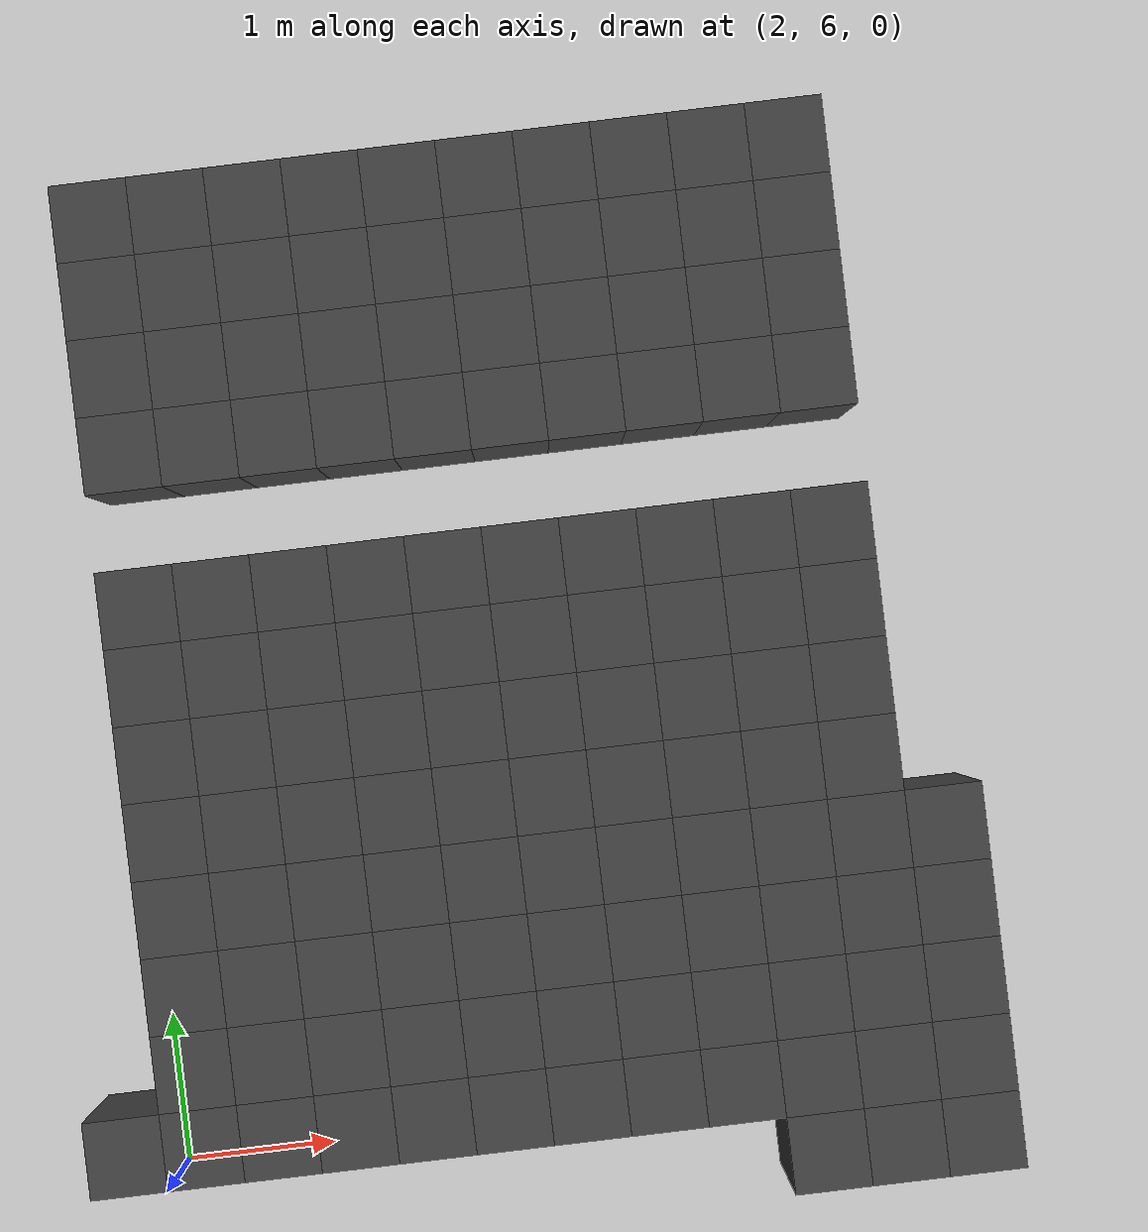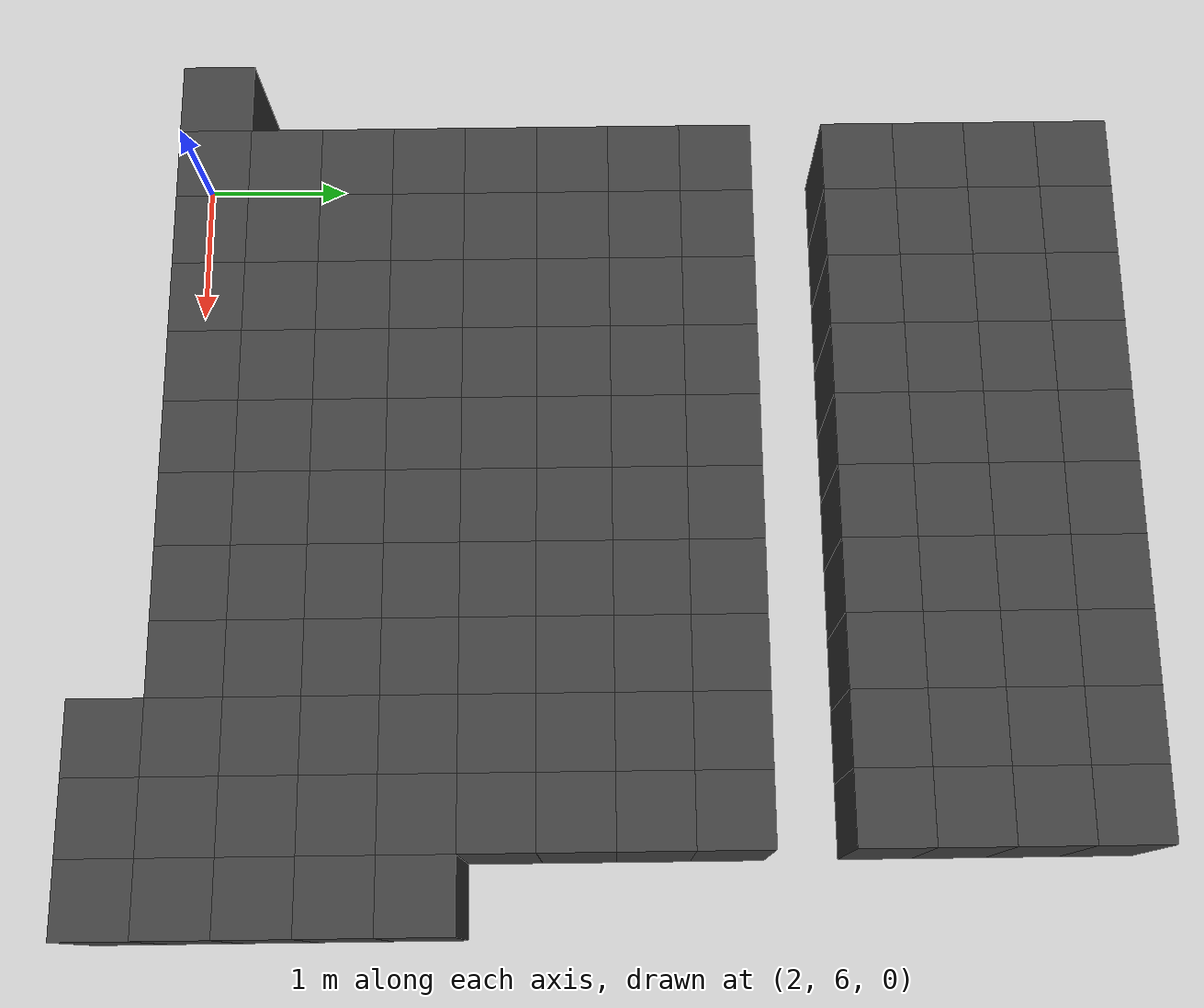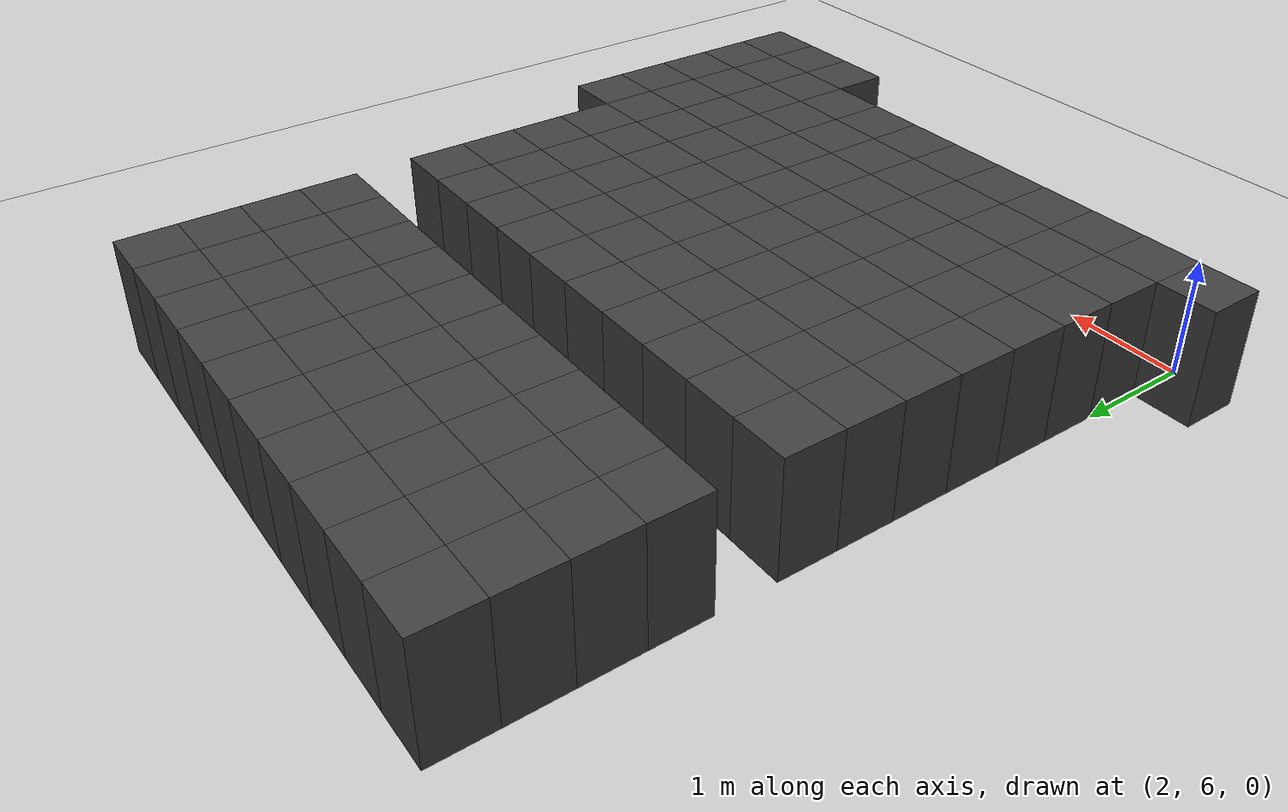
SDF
<sdf version="1.7">
 <world name="map_14494">
  <model name="ground_plane">
   <static>true</static>
   <link name="link">
    <collision name="collision">
     <geometry><plane><normal>0 0 1</normal><size>200 200</size></plane></geometry>
    </collision>
    <visual name="visual">
     <geometry><plane><normal>0 0 1</normal><size>200 200</size></plane></geometry>
     <material><ambient>0.8 0.8 0.8 1</ambient><diffuse>0.8 0.8 0.8 1</diffuse></material>
    </visual>
   </link>
  </model>
  <model name="maze_environment">
   <static>true</static>
   <link name="wall_29">
    <pose>2.250 12.250 0.500 0 0 0</pose>
    <collision name="col"><geometry><box><size>0.5 0.5 1.0</size></box></geometry></collision>
    <visual name="vis">
     <geometry><box><size>0.5 0.5 1.0</size></box></geometry>
     <material><ambient>0.15 0.15 0.15 1</ambient><diffuse>0.25 0.25 0.25 1</diffuse></material>
    </visual>
   </link>
   <link name="wall_30">
    <pose>2.750 12.250 0.500 0 0 0</pose>
    <collision name="col"><geometry><box><size>0.5 0.5 1.0</size></box></geometry></collision>
    <visual name="vis">
     <geometry><box><size>0.5 0.5 1.0</size></box></geometry>
     <material><ambient>0.15 0.15 0.15 1</ambient><diffuse>0.25 0.25 0.25 1</diffuse></material>
    </visual>
   </link>
   <link name="wall_31">
    <pose>3.250 12.250 0.500 0 0 0</pose>
    <collision name="col"><geometry><box><size>0.5 0.5 1.0</size></box></geometry></collision>
    <visual name="vis">
     <geometry><box><size>0.5 0.5 1.0</size></box></geometry>
     <material><ambient>0.15 0.15 0.15 1</ambient><diffuse>0.25 0.25 0.25 1</diffuse></material>
    </visual>
   </link>
   <link name="wall_32">
    <pose>3.750 12.250 0.500 0 0 0</pose>
    <collision name="col"><geometry><box><size>0.5 0.5 1.0</size></box></geometry></collision>
    <visual name="vis">
     <geometry><box><size>0.5 0.5 1.0</size></box></geometry>
     <material><ambient>0.15 0.15 0.15 1</ambient><diffuse>0.25 0.25 0.25 1</diffuse></material>
    </visual>
   </link>
   <link name="wall_33">
    <pose>4.250 12.250 0.500 0 0 0</pose>
    <collision name="col"><geometry><box><size>0.5 0.5 1.0</size></box></geometry></collision>
    <visual name="vis">
     <geometry><box><size>0.5 0.5 1.0</size></box></geometry>
     <material><ambient>0.15 0.15 0.15 1</ambient><diffuse>0.25 0.25 0.25 1</diffuse></material>
    </visual>
   </link>
   <link name="wall_34">
    <pose>4.750 12.250 0.500 0 0 0</pose>
    <collision name="col"><geometry><box><size>0.5 0.5 1.0</size></box></geometry></collision>
    <visual name="vis">
     <geometry><box><size>0.5 0.5 1.0</size></box></geometry>
     <material><ambient>0.15 0.15 0.15 1</ambient><diffuse>0.25 0.25 0.25 1</diffuse></material>
    </visual>
   </link>
   <link name="wall_35">
    <pose>5.250 12.250 0.500 0 0 0</pose>
    <collision name="col"><geometry><box><size>0.5 0.5 1.0</size></box></geometry></collision>
    <visual name="vis">
     <geometry><box><size>0.5 0.5 1.0</size></box></geometry>
     <material><ambient>0.15 0.15 0.15 1</ambient><diffuse>0.25 0.25 0.25 1</diffuse></material>
    </visual>
   </link>
   <link name="wall_36">
    <pose>5.750 12.250 0.500 0 0 0</pose>
    <collision name="col"><geometry><box><size>0.5 0.5 1.0</size></box></geometry></collision>
    <visual name="vis">
     <geometry><box><size>0.5 0.5 1.0</size></box></geometry>
     <material><ambient>0.15 0.15 0.15 1</ambient><diffuse>0.25 0.25 0.25 1</diffuse></material>
    </visual>
   </link>
   <link name="wall_37">
    <pose>6.250 12.250 0.500 0 0 0</pose>
    <collision name="col"><geometry><box><size>0.5 0.5 1.0</size></box></geometry></collision>
    <visual name="vis">
     <geometry><box><size>0.5 0.5 1.0</size></box></geometry>
     <material><ambient>0.15 0.15 0.15 1</ambient><diffuse>0.25 0.25 0.25 1</diffuse></material>
    </visual>
   </link>
   <link name="wall_38">
    <pose>6.750 12.250 0.500 0 0 0</pose>
    <collision name="col"><geometry><box><size>0.5 0.5 1.0</size></box></geometry></collision>
    <visual name="vis">
     <geometry><box><size>0.5 0.5 1.0</size></box></geometry>
     <material><ambient>0.15 0.15 0.15 1</ambient><diffuse>0.25 0.25 0.25 1</diffuse></material>
    </visual>
   </link>
   <link name="wall_76">
    <pose>2.250 11.750 0.500 0 0 0</pose>
    <collision name="col"><geometry><box><size>0.5 0.5 1.0</size></box></geometry></collision>
    <visual name="vis">
     <geometry><box><size>0.5 0.5 1.0</size></box></geometry>
     <material><ambient>0.15 0.15 0.15 1</ambient><diffuse>0.25 0.25 0.25 1</diffuse></material>
    </visual>
   </link>
   <link name="wall_77">
    <pose>2.750 11.750 0.500 0 0 0</pose>
    <collision name="col"><geometry><box><size>0.5 0.5 1.0</size></box></geometry></collision>
    <visual name="vis">
     <geometry><box><size>0.5 0.5 1.0</size></box></geometry>
     <material><ambient>0.15 0.15 0.15 1</ambient><diffuse>0.25 0.25 0.25 1</diffuse></material>
    </visual>
   </link>
   <link name="wall_78">
    <pose>3.250 11.750 0.500 0 0 0</pose>
    <collision name="col"><geometry><box><size>0.5 0.5 1.0</size></box></geometry></collision>
    <visual name="vis">
     <geometry><box><size>0.5 0.5 1.0</size></box></geometry>
     <material><ambient>0.15 0.15 0.15 1</ambient><diffuse>0.25 0.25 0.25 1</diffuse></material>
    </visual>
   </link>
   <link name="wall_79">
    <pose>3.750 11.750 0.500 0 0 0</pose>
    <collision name="col"><geometry><box><size>0.5 0.5 1.0</size></box></geometry></collision>
    <visual name="vis">
     <geometry><box><size>0.5 0.5 1.0</size></box></geometry>
     <material><ambient>0.15 0.15 0.15 1</ambient><diffuse>0.25 0.25 0.25 1</diffuse></material>
    </visual>
   </link>
   <link name="wall_80">
    <pose>4.250 11.750 0.500 0 0 0</pose>
    <collision name="col"><geometry><box><size>0.5 0.5 1.0</size></box></geometry></collision>
    <visual name="vis">
     <geometry><box><size>0.5 0.5 1.0</size></box></geometry>
     <material><ambient>0.15 0.15 0.15 1</ambient><diffuse>0.25 0.25 0.25 1</diffuse></material>
    </visual>
   </link>
   <link name="wall_81">
    <pose>4.750 11.750 0.500 0 0 0</pose>
    <collision name="col"><geometry><box><size>0.5 0.5 1.0</size></box></geometry></collision>
    <visual name="vis">
     <geometry><box><size>0.5 0.5 1.0</size></box></geometry>
     <material><ambient>0.15 0.15 0.15 1</ambient><diffuse>0.25 0.25 0.25 1</diffuse></material>
    </visual>
   </link>
   <link name="wall_82">
    <pose>5.250 11.750 0.500 0 0 0</pose>
    <collision name="col"><geometry><box><size>0.5 0.5 1.0</size></box></geometry></collision>
    <visual name="vis">
     <geometry><box><size>0.5 0.5 1.0</size></box></geometry>
     <material><ambient>0.15 0.15 0.15 1</ambient><diffuse>0.25 0.25 0.25 1</diffuse></material>
    </visual>
   </link>
   <link name="wall_83">
    <pose>5.750 11.750 0.500 0 0 0</pose>
    <collision name="col"><geometry><box><size>0.5 0.5 1.0</size></box></geometry></collision>
    <visual name="vis">
     <geometry><box><size>0.5 0.5 1.0</size></box></geometry>
     <material><ambient>0.15 0.15 0.15 1</ambient><diffuse>0.25 0.25 0.25 1</diffuse></material>
    </visual>
   </link>
   <link name="wall_84">
    <pose>6.250 11.750 0.500 0 0 0</pose>
    <collision name="col"><geometry><box><size>0.5 0.5 1.0</size></box></geometry></collision>
    <visual name="vis">
     <geometry><box><size>0.5 0.5 1.0</size></box></geometry>
     <material><ambient>0.15 0.15 0.15 1</ambient><diffuse>0.25 0.25 0.25 1</diffuse></material>
    </visual>
   </link>
   <link name="wall_85">
    <pose>6.750 11.750 0.500 0 0 0</pose>
    <collision name="col"><geometry><box><size>0.5 0.5 1.0</size></box></geometry></collision>
    <visual name="vis">
     <geometry><box><size>0.5 0.5 1.0</size></box></geometry>
     <material><ambient>0.15 0.15 0.15 1</ambient><diffuse>0.25 0.25 0.25 1</diffuse></material>
    </visual>
   </link>
   <link name="wall_115">
    <pose>2.250 11.250 0.500 0 0 0</pose>
    <collision name="col"><geometry><box><size>0.5 0.5 1.0</size></box></geometry></collision>
    <visual name="vis">
     <geometry><box><size>0.5 0.5 1.0</size></box></geometry>
     <material><ambient>0.15 0.15 0.15 1</ambient><diffuse>0.25 0.25 0.25 1</diffuse></material>
    </visual>
   </link>
   <link name="wall_116">
    <pose>2.750 11.250 0.500 0 0 0</pose>
    <collision name="col"><geometry><box><size>0.5 0.5 1.0</size></box></geometry></collision>
    <visual name="vis">
     <geometry><box><size>0.5 0.5 1.0</size></box></geometry>
     <material><ambient>0.15 0.15 0.15 1</ambient><diffuse>0.25 0.25 0.25 1</diffuse></material>
    </visual>
   </link>
   <link name="wall_117">
    <pose>3.250 11.250 0.500 0 0 0</pose>
    <collision name="col"><geometry><box><size>0.5 0.5 1.0</size></box></geometry></collision>
    <visual name="vis">
     <geometry><box><size>0.5 0.5 1.0</size></box></geometry>
     <material><ambient>0.15 0.15 0.15 1</ambient><diffuse>0.25 0.25 0.25 1</diffuse></material>
    </visual>
   </link>
   <link name="wall_118">
    <pose>3.750 11.250 0.500 0 0 0</pose>
    <collision name="col"><geometry><box><size>0.5 0.5 1.0</size></box></geometry></collision>
    <visual name="vis">
     <geometry><box><size>0.5 0.5 1.0</size></box></geometry>
     <material><ambient>0.15 0.15 0.15 1</ambient><diffuse>0.25 0.25 0.25 1</diffuse></material>
    </visual>
   </link>
   <link name="wall_119">
    <pose>4.250 11.250 0.500 0 0 0</pose>
    <collision name="col"><geometry><box><size>0.5 0.5 1.0</size></box></geometry></collision>
    <visual name="vis">
     <geometry><box><size>0.5 0.5 1.0</size></box></geometry>
     <material><ambient>0.15 0.15 0.15 1</ambient><diffuse>0.25 0.25 0.25 1</diffuse></material>
    </visual>
   </link>
   <link name="wall_120">
    <pose>4.750 11.250 0.500 0 0 0</pose>
    <collision name="col"><geometry><box><size>0.5 0.5 1.0</size></box></geometry></collision>
    <visual name="vis">
     <geometry><box><size>0.5 0.5 1.0</size></box></geometry>
     <material><ambient>0.15 0.15 0.15 1</ambient><diffuse>0.25 0.25 0.25 1</diffuse></material>
    </visual>
   </link>
   <link name="wall_121">
    <pose>5.250 11.250 0.500 0 0 0</pose>
    <collision name="col"><geometry><box><size>0.5 0.5 1.0</size></box></geometry></collision>
    <visual name="vis">
     <geometry><box><size>0.5 0.5 1.0</size></box></geometry>
     <material><ambient>0.15 0.15 0.15 1</ambient><diffuse>0.25 0.25 0.25 1</diffuse></material>
    </visual>
   </link>
   <link name="wall_122">
    <pose>5.750 11.250 0.500 0 0 0</pose>
    <collision name="col"><geometry><box><size>0.5 0.5 1.0</size></box></geometry></collision>
    <visual name="vis">
     <geometry><box><size>0.5 0.5 1.0</size></box></geometry>
     <material><ambient>0.15 0.15 0.15 1</ambient><diffuse>0.25 0.25 0.25 1</diffuse></material>
    </visual>
   </link>
   <link name="wall_123">
    <pose>6.250 11.250 0.500 0 0 0</pose>
    <collision name="col"><geometry><box><size>0.5 0.5 1.0</size></box></geometry></collision>
    <visual name="vis">
     <geometry><box><size>0.5 0.5 1.0</size></box></geometry>
     <material><ambient>0.15 0.15 0.15 1</ambient><diffuse>0.25 0.25 0.25 1</diffuse></material>
    </visual>
   </link>
   <link name="wall_124">
    <pose>6.750 11.250 0.500 0 0 0</pose>
    <collision name="col"><geometry><box><size>0.5 0.5 1.0</size></box></geometry></collision>
    <visual name="vis">
     <geometry><box><size>0.5 0.5 1.0</size></box></geometry>
     <material><ambient>0.15 0.15 0.15 1</ambient><diffuse>0.25 0.25 0.25 1</diffuse></material>
    </visual>
   </link>
   <link name="wall_143">
    <pose>2.250 10.750 0.500 0 0 0</pose>
    <collision name="col"><geometry><box><size>0.5 0.5 1.0</size></box></geometry></collision>
    <visual name="vis">
     <geometry><box><size>0.5 0.5 1.0</size></box></geometry>
     <material><ambient>0.15 0.15 0.15 1</ambient><diffuse>0.25 0.25 0.25 1</diffuse></material>
    </visual>
   </link>
   <link name="wall_144">
    <pose>2.750 10.750 0.500 0 0 0</pose>
    <collision name="col"><geometry><box><size>0.5 0.5 1.0</size></box></geometry></collision>
    <visual name="vis">
     <geometry><box><size>0.5 0.5 1.0</size></box></geometry>
     <material><ambient>0.15 0.15 0.15 1</ambient><diffuse>0.25 0.25 0.25 1</diffuse></material>
    </visual>
   </link>
   <link name="wall_145">
    <pose>3.250 10.750 0.500 0 0 0</pose>
    <collision name="col"><geometry><box><size>0.5 0.5 1.0</size></box></geometry></collision>
    <visual name="vis">
     <geometry><box><size>0.5 0.5 1.0</size></box></geometry>
     <material><ambient>0.15 0.15 0.15 1</ambient><diffuse>0.25 0.25 0.25 1</diffuse></material>
    </visual>
   </link>
   <link name="wall_146">
    <pose>3.750 10.750 0.500 0 0 0</pose>
    <collision name="col"><geometry><box><size>0.5 0.5 1.0</size></box></geometry></collision>
    <visual name="vis">
     <geometry><box><size>0.5 0.5 1.0</size></box></geometry>
     <material><ambient>0.15 0.15 0.15 1</ambient><diffuse>0.25 0.25 0.25 1</diffuse></material>
    </visual>
   </link>
   <link name="wall_147">
    <pose>4.250 10.750 0.500 0 0 0</pose>
    <collision name="col"><geometry><box><size>0.5 0.5 1.0</size></box></geometry></collision>
    <visual name="vis">
     <geometry><box><size>0.5 0.5 1.0</size></box></geometry>
     <material><ambient>0.15 0.15 0.15 1</ambient><diffuse>0.25 0.25 0.25 1</diffuse></material>
    </visual>
   </link>
   <link name="wall_148">
    <pose>4.750 10.750 0.500 0 0 0</pose>
    <collision name="col"><geometry><box><size>0.5 0.5 1.0</size></box></geometry></collision>
    <visual name="vis">
     <geometry><box><size>0.5 0.5 1.0</size></box></geometry>
     <material><ambient>0.15 0.15 0.15 1</ambient><diffuse>0.25 0.25 0.25 1</diffuse></material>
    </visual>
   </link>
   <link name="wall_149">
    <pose>5.250 10.750 0.500 0 0 0</pose>
    <collision name="col"><geometry><box><size>0.5 0.5 1.0</size></box></geometry></collision>
    <visual name="vis">
     <geometry><box><size>0.5 0.5 1.0</size></box></geometry>
     <material><ambient>0.15 0.15 0.15 1</ambient><diffuse>0.25 0.25 0.25 1</diffuse></material>
    </visual>
   </link>
   <link name="wall_150">
    <pose>5.750 10.750 0.500 0 0 0</pose>
    <collision name="col"><geometry><box><size>0.5 0.5 1.0</size></box></geometry></collision>
    <visual name="vis">
     <geometry><box><size>0.5 0.5 1.0</size></box></geometry>
     <material><ambient>0.15 0.15 0.15 1</ambient><diffuse>0.25 0.25 0.25 1</diffuse></material>
    </visual>
   </link>
   <link name="wall_151">
    <pose>6.250 10.750 0.500 0 0 0</pose>
    <collision name="col"><geometry><box><size>0.5 0.5 1.0</size></box></geometry></collision>
    <visual name="vis">
     <geometry><box><size>0.5 0.5 1.0</size></box></geometry>
     <material><ambient>0.15 0.15 0.15 1</ambient><diffuse>0.25 0.25 0.25 1</diffuse></material>
    </visual>
   </link>
   <link name="wall_152">
    <pose>6.750 10.750 0.500 0 0 0</pose>
    <collision name="col"><geometry><box><size>0.5 0.5 1.0</size></box></geometry></collision>
    <visual name="vis">
     <geometry><box><size>0.5 0.5 1.0</size></box></geometry>
     <material><ambient>0.15 0.15 0.15 1</ambient><diffuse>0.25 0.25 0.25 1</diffuse></material>
    </visual>
   </link>
   <link name="wall_191">
    <pose>2.250 9.750 0.500 0 0 0</pose>
    <collision name="col"><geometry><box><size>0.5 0.5 1.0</size></box></geometry></collision>
    <visual name="vis">
     <geometry><box><size>0.5 0.5 1.0</size></box></geometry>
     <material><ambient>0.15 0.15 0.15 1</ambient><diffuse>0.25 0.25 0.25 1</diffuse></material>
    </visual>
   </link>
   <link name="wall_192">
    <pose>2.750 9.750 0.500 0 0 0</pose>
    <collision name="col"><geometry><box><size>0.5 0.5 1.0</size></box></geometry></collision>
    <visual name="vis">
     <geometry><box><size>0.5 0.5 1.0</size></box></geometry>
     <material><ambient>0.15 0.15 0.15 1</ambient><diffuse>0.25 0.25 0.25 1</diffuse></material>
    </visual>
   </link>
   <link name="wall_193">
    <pose>3.250 9.750 0.500 0 0 0</pose>
    <collision name="col"><geometry><box><size>0.5 0.5 1.0</size></box></geometry></collision>
    <visual name="vis">
     <geometry><box><size>0.5 0.5 1.0</size></box></geometry>
     <material><ambient>0.15 0.15 0.15 1</ambient><diffuse>0.25 0.25 0.25 1</diffuse></material>
    </visual>
   </link>
   <link name="wall_194">
    <pose>3.750 9.750 0.500 0 0 0</pose>
    <collision name="col"><geometry><box><size>0.5 0.5 1.0</size></box></geometry></collision>
    <visual name="vis">
     <geometry><box><size>0.5 0.5 1.0</size></box></geometry>
     <material><ambient>0.15 0.15 0.15 1</ambient><diffuse>0.25 0.25 0.25 1</diffuse></material>
    </visual>
   </link>
   <link name="wall_195">
    <pose>4.250 9.750 0.500 0 0 0</pose>
    <collision name="col"><geometry><box><size>0.5 0.5 1.0</size></box></geometry></collision>
    <visual name="vis">
     <geometry><box><size>0.5 0.5 1.0</size></box></geometry>
     <material><ambient>0.15 0.15 0.15 1</ambient><diffuse>0.25 0.25 0.25 1</diffuse></material>
    </visual>
   </link>
   <link name="wall_196">
    <pose>4.750 9.750 0.500 0 0 0</pose>
    <collision name="col"><geometry><box><size>0.5 0.5 1.0</size></box></geometry></collision>
    <visual name="vis">
     <geometry><box><size>0.5 0.5 1.0</size></box></geometry>
     <material><ambient>0.15 0.15 0.15 1</ambient><diffuse>0.25 0.25 0.25 1</diffuse></material>
    </visual>
   </link>
   <link name="wall_197">
    <pose>5.250 9.750 0.500 0 0 0</pose>
    <collision name="col"><geometry><box><size>0.5 0.5 1.0</size></box></geometry></collision>
    <visual name="vis">
     <geometry><box><size>0.5 0.5 1.0</size></box></geometry>
     <material><ambient>0.15 0.15 0.15 1</ambient><diffuse>0.25 0.25 0.25 1</diffuse></material>
    </visual>
   </link>
   <link name="wall_198">
    <pose>5.750 9.750 0.500 0 0 0</pose>
    <collision name="col"><geometry><box><size>0.5 0.5 1.0</size></box></geometry></collision>
    <visual name="vis">
     <geometry><box><size>0.5 0.5 1.0</size></box></geometry>
     <material><ambient>0.15 0.15 0.15 1</ambient><diffuse>0.25 0.25 0.25 1</diffuse></material>
    </visual>
   </link>
   <link name="wall_199">
    <pose>6.250 9.750 0.500 0 0 0</pose>
    <collision name="col"><geometry><box><size>0.5 0.5 1.0</size></box></geometry></collision>
    <visual name="vis">
     <geometry><box><size>0.5 0.5 1.0</size></box></geometry>
     <material><ambient>0.15 0.15 0.15 1</ambient><diffuse>0.25 0.25 0.25 1</diffuse></material>
    </visual>
   </link>
   <link name="wall_200">
    <pose>6.750 9.750 0.500 0 0 0</pose>
    <collision name="col"><geometry><box><size>0.5 0.5 1.0</size></box></geometry></collision>
    <visual name="vis">
     <geometry><box><size>0.5 0.5 1.0</size></box></geometry>
     <material><ambient>0.15 0.15 0.15 1</ambient><diffuse>0.25 0.25 0.25 1</diffuse></material>
    </visual>
   </link>
   <link name="wall_216">
    <pose>2.250 9.250 0.500 0 0 0</pose>
    <collision name="col"><geometry><box><size>0.5 0.5 1.0</size></box></geometry></collision>
    <visual name="vis">
     <geometry><box><size>0.5 0.5 1.0</size></box></geometry>
     <material><ambient>0.15 0.15 0.15 1</ambient><diffuse>0.25 0.25 0.25 1</diffuse></material>
    </visual>
   </link>
   <link name="wall_217">
    <pose>2.750 9.250 0.500 0 0 0</pose>
    <collision name="col"><geometry><box><size>0.5 0.5 1.0</size></box></geometry></collision>
    <visual name="vis">
     <geometry><box><size>0.5 0.5 1.0</size></box></geometry>
     <material><ambient>0.15 0.15 0.15 1</ambient><diffuse>0.25 0.25 0.25 1</diffuse></material>
    </visual>
   </link>
   <link name="wall_218">
    <pose>3.250 9.250 0.500 0 0 0</pose>
    <collision name="col"><geometry><box><size>0.5 0.5 1.0</size></box></geometry></collision>
    <visual name="vis">
     <geometry><box><size>0.5 0.5 1.0</size></box></geometry>
     <material><ambient>0.15 0.15 0.15 1</ambient><diffuse>0.25 0.25 0.25 1</diffuse></material>
    </visual>
   </link>
   <link name="wall_219">
    <pose>3.750 9.250 0.500 0 0 0</pose>
    <collision name="col"><geometry><box><size>0.5 0.5 1.0</size></box></geometry></collision>
    <visual name="vis">
     <geometry><box><size>0.5 0.5 1.0</size></box></geometry>
     <material><ambient>0.15 0.15 0.15 1</ambient><diffuse>0.25 0.25 0.25 1</diffuse></material>
    </visual>
   </link>
   <link name="wall_220">
    <pose>4.250 9.250 0.500 0 0 0</pose>
    <collision name="col"><geometry><box><size>0.5 0.5 1.0</size></box></geometry></collision>
    <visual name="vis">
     <geometry><box><size>0.5 0.5 1.0</size></box></geometry>
     <material><ambient>0.15 0.15 0.15 1</ambient><diffuse>0.25 0.25 0.25 1</diffuse></material>
    </visual>
   </link>
   <link name="wall_221">
    <pose>4.750 9.250 0.500 0 0 0</pose>
    <collision name="col"><geometry><box><size>0.5 0.5 1.0</size></box></geometry></collision>
    <visual name="vis">
     <geometry><box><size>0.5 0.5 1.0</size></box></geometry>
     <material><ambient>0.15 0.15 0.15 1</ambient><diffuse>0.25 0.25 0.25 1</diffuse></material>
    </visual>
   </link>
   <link name="wall_222">
    <pose>5.250 9.250 0.500 0 0 0</pose>
    <collision name="col"><geometry><box><size>0.5 0.5 1.0</size></box></geometry></collision>
    <visual name="vis">
     <geometry><box><size>0.5 0.5 1.0</size></box></geometry>
     <material><ambient>0.15 0.15 0.15 1</ambient><diffuse>0.25 0.25 0.25 1</diffuse></material>
    </visual>
   </link>
   <link name="wall_223">
    <pose>5.750 9.250 0.500 0 0 0</pose>
    <collision name="col"><geometry><box><size>0.5 0.5 1.0</size></box></geometry></collision>
    <visual name="vis">
     <geometry><box><size>0.5 0.5 1.0</size></box></geometry>
     <material><ambient>0.15 0.15 0.15 1</ambient><diffuse>0.25 0.25 0.25 1</diffuse></material>
    </visual>
   </link>
   <link name="wall_224">
    <pose>6.250 9.250 0.500 0 0 0</pose>
    <collision name="col"><geometry><box><size>0.5 0.5 1.0</size></box></geometry></collision>
    <visual name="vis">
     <geometry><box><size>0.5 0.5 1.0</size></box></geometry>
     <material><ambient>0.15 0.15 0.15 1</ambient><diffuse>0.25 0.25 0.25 1</diffuse></material>
    </visual>
   </link>
   <link name="wall_225">
    <pose>6.750 9.250 0.500 0 0 0</pose>
    <collision name="col"><geometry><box><size>0.5 0.5 1.0</size></box></geometry></collision>
    <visual name="vis">
     <geometry><box><size>0.5 0.5 1.0</size></box></geometry>
     <material><ambient>0.15 0.15 0.15 1</ambient><diffuse>0.25 0.25 0.25 1</diffuse></material>
    </visual>
   </link>
   <link name="wall_254">
    <pose>2.250 8.750 0.500 0 0 0</pose>
    <collision name="col"><geometry><box><size>0.5 0.5 1.0</size></box></geometry></collision>
    <visual name="vis">
     <geometry><box><size>0.5 0.5 1.0</size></box></geometry>
     <material><ambient>0.15 0.15 0.15 1</ambient><diffuse>0.25 0.25 0.25 1</diffuse></material>
    </visual>
   </link>
   <link name="wall_255">
    <pose>2.750 8.750 0.500 0 0 0</pose>
    <collision name="col"><geometry><box><size>0.5 0.5 1.0</size></box></geometry></collision>
    <visual name="vis">
     <geometry><box><size>0.5 0.5 1.0</size></box></geometry>
     <material><ambient>0.15 0.15 0.15 1</ambient><diffuse>0.25 0.25 0.25 1</diffuse></material>
    </visual>
   </link>
   <link name="wall_256">
    <pose>3.250 8.750 0.500 0 0 0</pose>
    <collision name="col"><geometry><box><size>0.5 0.5 1.0</size></box></geometry></collision>
    <visual name="vis">
     <geometry><box><size>0.5 0.5 1.0</size></box></geometry>
     <material><ambient>0.15 0.15 0.15 1</ambient><diffuse>0.25 0.25 0.25 1</diffuse></material>
    </visual>
   </link>
   <link name="wall_257">
    <pose>3.750 8.750 0.500 0 0 0</pose>
    <collision name="col"><geometry><box><size>0.5 0.5 1.0</size></box></geometry></collision>
    <visual name="vis">
     <geometry><box><size>0.5 0.5 1.0</size></box></geometry>
     <material><ambient>0.15 0.15 0.15 1</ambient><diffuse>0.25 0.25 0.25 1</diffuse></material>
    </visual>
   </link>
   <link name="wall_258">
    <pose>4.250 8.750 0.500 0 0 0</pose>
    <collision name="col"><geometry><box><size>0.5 0.5 1.0</size></box></geometry></collision>
    <visual name="vis">
     <geometry><box><size>0.5 0.5 1.0</size></box></geometry>
     <material><ambient>0.15 0.15 0.15 1</ambient><diffuse>0.25 0.25 0.25 1</diffuse></material>
    </visual>
   </link>
   <link name="wall_259">
    <pose>4.750 8.750 0.500 0 0 0</pose>
    <collision name="col"><geometry><box><size>0.5 0.5 1.0</size></box></geometry></collision>
    <visual name="vis">
     <geometry><box><size>0.5 0.5 1.0</size></box></geometry>
     <material><ambient>0.15 0.15 0.15 1</ambient><diffuse>0.25 0.25 0.25 1</diffuse></material>
    </visual>
   </link>
   <link name="wall_260">
    <pose>5.250 8.750 0.500 0 0 0</pose>
    <collision name="col"><geometry><box><size>0.5 0.5 1.0</size></box></geometry></collision>
    <visual name="vis">
     <geometry><box><size>0.5 0.5 1.0</size></box></geometry>
     <material><ambient>0.15 0.15 0.15 1</ambient><diffuse>0.25 0.25 0.25 1</diffuse></material>
    </visual>
   </link>
   <link name="wall_261">
    <pose>5.750 8.750 0.500 0 0 0</pose>
    <collision name="col"><geometry><box><size>0.5 0.5 1.0</size></box></geometry></collision>
    <visual name="vis">
     <geometry><box><size>0.5 0.5 1.0</size></box></geometry>
     <material><ambient>0.15 0.15 0.15 1</ambient><diffuse>0.25 0.25 0.25 1</diffuse></material>
    </visual>
   </link>
   <link name="wall_262">
    <pose>6.250 8.750 0.500 0 0 0</pose>
    <collision name="col"><geometry><box><size>0.5 0.5 1.0</size></box></geometry></collision>
    <visual name="vis">
     <geometry><box><size>0.5 0.5 1.0</size></box></geometry>
     <material><ambient>0.15 0.15 0.15 1</ambient><diffuse>0.25 0.25 0.25 1</diffuse></material>
    </visual>
   </link>
   <link name="wall_263">
    <pose>6.750 8.750 0.500 0 0 0</pose>
    <collision name="col"><geometry><box><size>0.5 0.5 1.0</size></box></geometry></collision>
    <visual name="vis">
     <geometry><box><size>0.5 0.5 1.0</size></box></geometry>
     <material><ambient>0.15 0.15 0.15 1</ambient><diffuse>0.25 0.25 0.25 1</diffuse></material>
    </visual>
   </link>
   <link name="wall_296">
    <pose>2.250 8.250 0.500 0 0 0</pose>
    <collision name="col"><geometry><box><size>0.5 0.5 1.0</size></box></geometry></collision>
    <visual name="vis">
     <geometry><box><size>0.5 0.5 1.0</size></box></geometry>
     <material><ambient>0.15 0.15 0.15 1</ambient><diffuse>0.25 0.25 0.25 1</diffuse></material>
    </visual>
   </link>
   <link name="wall_297">
    <pose>2.750 8.250 0.500 0 0 0</pose>
    <collision name="col"><geometry><box><size>0.5 0.5 1.0</size></box></geometry></collision>
    <visual name="vis">
     <geometry><box><size>0.5 0.5 1.0</size></box></geometry>
     <material><ambient>0.15 0.15 0.15 1</ambient><diffuse>0.25 0.25 0.25 1</diffuse></material>
    </visual>
   </link>
   <link name="wall_298">
    <pose>3.250 8.250 0.500 0 0 0</pose>
    <collision name="col"><geometry><box><size>0.5 0.5 1.0</size></box></geometry></collision>
    <visual name="vis">
     <geometry><box><size>0.5 0.5 1.0</size></box></geometry>
     <material><ambient>0.15 0.15 0.15 1</ambient><diffuse>0.25 0.25 0.25 1</diffuse></material>
    </visual>
   </link>
   <link name="wall_299">
    <pose>3.750 8.250 0.500 0 0 0</pose>
    <collision name="col"><geometry><box><size>0.5 0.5 1.0</size></box></geometry></collision>
    <visual name="vis">
     <geometry><box><size>0.5 0.5 1.0</size></box></geometry>
     <material><ambient>0.15 0.15 0.15 1</ambient><diffuse>0.25 0.25 0.25 1</diffuse></material>
    </visual>
   </link>
   <link name="wall_300">
    <pose>4.250 8.250 0.500 0 0 0</pose>
    <collision name="col"><geometry><box><size>0.5 0.5 1.0</size></box></geometry></collision>
    <visual name="vis">
     <geometry><box><size>0.5 0.5 1.0</size></box></geometry>
     <material><ambient>0.15 0.15 0.15 1</ambient><diffuse>0.25 0.25 0.25 1</diffuse></material>
    </visual>
   </link>
   <link name="wall_301">
    <pose>4.750 8.250 0.500 0 0 0</pose>
    <collision name="col"><geometry><box><size>0.5 0.5 1.0</size></box></geometry></collision>
    <visual name="vis">
     <geometry><box><size>0.5 0.5 1.0</size></box></geometry>
     <material><ambient>0.15 0.15 0.15 1</ambient><diffuse>0.25 0.25 0.25 1</diffuse></material>
    </visual>
   </link>
   <link name="wall_302">
    <pose>5.250 8.250 0.500 0 0 0</pose>
    <collision name="col"><geometry><box><size>0.5 0.5 1.0</size></box></geometry></collision>
    <visual name="vis">
     <geometry><box><size>0.5 0.5 1.0</size></box></geometry>
     <material><ambient>0.15 0.15 0.15 1</ambient><diffuse>0.25 0.25 0.25 1</diffuse></material>
    </visual>
   </link>
   <link name="wall_303">
    <pose>5.750 8.250 0.500 0 0 0</pose>
    <collision name="col"><geometry><box><size>0.5 0.5 1.0</size></box></geometry></collision>
    <visual name="vis">
     <geometry><box><size>0.5 0.5 1.0</size></box></geometry>
     <material><ambient>0.15 0.15 0.15 1</ambient><diffuse>0.25 0.25 0.25 1</diffuse></material>
    </visual>
   </link>
   <link name="wall_304">
    <pose>6.250 8.250 0.500 0 0 0</pose>
    <collision name="col"><geometry><box><size>0.5 0.5 1.0</size></box></geometry></collision>
    <visual name="vis">
     <geometry><box><size>0.5 0.5 1.0</size></box></geometry>
     <material><ambient>0.15 0.15 0.15 1</ambient><diffuse>0.25 0.25 0.25 1</diffuse></material>
    </visual>
   </link>
   <link name="wall_305">
    <pose>6.750 8.250 0.500 0 0 0</pose>
    <collision name="col"><geometry><box><size>0.5 0.5 1.0</size></box></geometry></collision>
    <visual name="vis">
     <geometry><box><size>0.5 0.5 1.0</size></box></geometry>
     <material><ambient>0.15 0.15 0.15 1</ambient><diffuse>0.25 0.25 0.25 1</diffuse></material>
    </visual>
   </link>
   <link name="wall_337">
    <pose>2.250 7.750 0.500 0 0 0</pose>
    <collision name="col"><geometry><box><size>0.5 0.5 1.0</size></box></geometry></collision>
    <visual name="vis">
     <geometry><box><size>0.5 0.5 1.0</size></box></geometry>
     <material><ambient>0.15 0.15 0.15 1</ambient><diffuse>0.25 0.25 0.25 1</diffuse></material>
    </visual>
   </link>
   <link name="wall_338">
    <pose>2.750 7.750 0.500 0 0 0</pose>
    <collision name="col"><geometry><box><size>0.5 0.5 1.0</size></box></geometry></collision>
    <visual name="vis">
     <geometry><box><size>0.5 0.5 1.0</size></box></geometry>
     <material><ambient>0.15 0.15 0.15 1</ambient><diffuse>0.25 0.25 0.25 1</diffuse></material>
    </visual>
   </link>
   <link name="wall_339">
    <pose>3.250 7.750 0.500 0 0 0</pose>
    <collision name="col"><geometry><box><size>0.5 0.5 1.0</size></box></geometry></collision>
    <visual name="vis">
     <geometry><box><size>0.5 0.5 1.0</size></box></geometry>
     <material><ambient>0.15 0.15 0.15 1</ambient><diffuse>0.25 0.25 0.25 1</diffuse></material>
    </visual>
   </link>
   <link name="wall_340">
    <pose>3.750 7.750 0.500 0 0 0</pose>
    <collision name="col"><geometry><box><size>0.5 0.5 1.0</size></box></geometry></collision>
    <visual name="vis">
     <geometry><box><size>0.5 0.5 1.0</size></box></geometry>
     <material><ambient>0.15 0.15 0.15 1</ambient><diffuse>0.25 0.25 0.25 1</diffuse></material>
    </visual>
   </link>
   <link name="wall_341">
    <pose>4.250 7.750 0.500 0 0 0</pose>
    <collision name="col"><geometry><box><size>0.5 0.5 1.0</size></box></geometry></collision>
    <visual name="vis">
     <geometry><box><size>0.5 0.5 1.0</size></box></geometry>
     <material><ambient>0.15 0.15 0.15 1</ambient><diffuse>0.25 0.25 0.25 1</diffuse></material>
    </visual>
   </link>
   <link name="wall_342">
    <pose>4.750 7.750 0.500 0 0 0</pose>
    <collision name="col"><geometry><box><size>0.5 0.5 1.0</size></box></geometry></collision>
    <visual name="vis">
     <geometry><box><size>0.5 0.5 1.0</size></box></geometry>
     <material><ambient>0.15 0.15 0.15 1</ambient><diffuse>0.25 0.25 0.25 1</diffuse></material>
    </visual>
   </link>
   <link name="wall_343">
    <pose>5.250 7.750 0.500 0 0 0</pose>
    <collision name="col"><geometry><box><size>0.5 0.5 1.0</size></box></geometry></collision>
    <visual name="vis">
     <geometry><box><size>0.5 0.5 1.0</size></box></geometry>
     <material><ambient>0.15 0.15 0.15 1</ambient><diffuse>0.25 0.25 0.25 1</diffuse></material>
    </visual>
   </link>
   <link name="wall_344">
    <pose>5.750 7.750 0.500 0 0 0</pose>
    <collision name="col"><geometry><box><size>0.5 0.5 1.0</size></box></geometry></collision>
    <visual name="vis">
     <geometry><box><size>0.5 0.5 1.0</size></box></geometry>
     <material><ambient>0.15 0.15 0.15 1</ambient><diffuse>0.25 0.25 0.25 1</diffuse></material>
    </visual>
   </link>
   <link name="wall_345">
    <pose>6.250 7.750 0.500 0 0 0</pose>
    <collision name="col"><geometry><box><size>0.5 0.5 1.0</size></box></geometry></collision>
    <visual name="vis">
     <geometry><box><size>0.5 0.5 1.0</size></box></geometry>
     <material><ambient>0.15 0.15 0.15 1</ambient><diffuse>0.25 0.25 0.25 1</diffuse></material>
    </visual>
   </link>
   <link name="wall_346">
    <pose>6.750 7.750 0.500 0 0 0</pose>
    <collision name="col"><geometry><box><size>0.5 0.5 1.0</size></box></geometry></collision>
    <visual name="vis">
     <geometry><box><size>0.5 0.5 1.0</size></box></geometry>
     <material><ambient>0.15 0.15 0.15 1</ambient><diffuse>0.25 0.25 0.25 1</diffuse></material>
    </visual>
   </link>
   <link name="wall_347">
    <pose>7.250 7.750 0.500 0 0 0</pose>
    <collision name="col"><geometry><box><size>0.5 0.5 1.0</size></box></geometry></collision>
    <visual name="vis">
     <geometry><box><size>0.5 0.5 1.0</size></box></geometry>
     <material><ambient>0.15 0.15 0.15 1</ambient><diffuse>0.25 0.25 0.25 1</diffuse></material>
    </visual>
   </link>
   <link name="wall_378">
    <pose>2.250 7.250 0.500 0 0 0</pose>
    <collision name="col"><geometry><box><size>0.5 0.5 1.0</size></box></geometry></collision>
    <visual name="vis">
     <geometry><box><size>0.5 0.5 1.0</size></box></geometry>
     <material><ambient>0.15 0.15 0.15 1</ambient><diffuse>0.25 0.25 0.25 1</diffuse></material>
    </visual>
   </link>
   <link name="wall_379">
    <pose>2.750 7.250 0.500 0 0 0</pose>
    <collision name="col"><geometry><box><size>0.5 0.5 1.0</size></box></geometry></collision>
    <visual name="vis">
     <geometry><box><size>0.5 0.5 1.0</size></box></geometry>
     <material><ambient>0.15 0.15 0.15 1</ambient><diffuse>0.25 0.25 0.25 1</diffuse></material>
    </visual>
   </link>
   <link name="wall_380">
    <pose>3.250 7.250 0.500 0 0 0</pose>
    <collision name="col"><geometry><box><size>0.5 0.5 1.0</size></box></geometry></collision>
    <visual name="vis">
     <geometry><box><size>0.5 0.5 1.0</size></box></geometry>
     <material><ambient>0.15 0.15 0.15 1</ambient><diffuse>0.25 0.25 0.25 1</diffuse></material>
    </visual>
   </link>
   <link name="wall_381">
    <pose>3.750 7.250 0.500 0 0 0</pose>
    <collision name="col"><geometry><box><size>0.5 0.5 1.0</size></box></geometry></collision>
    <visual name="vis">
     <geometry><box><size>0.5 0.5 1.0</size></box></geometry>
     <material><ambient>0.15 0.15 0.15 1</ambient><diffuse>0.25 0.25 0.25 1</diffuse></material>
    </visual>
   </link>
   <link name="wall_382">
    <pose>4.250 7.250 0.500 0 0 0</pose>
    <collision name="col"><geometry><box><size>0.5 0.5 1.0</size></box></geometry></collision>
    <visual name="vis">
     <geometry><box><size>0.5 0.5 1.0</size></box></geometry>
     <material><ambient>0.15 0.15 0.15 1</ambient><diffuse>0.25 0.25 0.25 1</diffuse></material>
    </visual>
   </link>
   <link name="wall_383">
    <pose>4.750 7.250 0.500 0 0 0</pose>
    <collision name="col"><geometry><box><size>0.5 0.5 1.0</size></box></geometry></collision>
    <visual name="vis">
     <geometry><box><size>0.5 0.5 1.0</size></box></geometry>
     <material><ambient>0.15 0.15 0.15 1</ambient><diffuse>0.25 0.25 0.25 1</diffuse></material>
    </visual>
   </link>
   <link name="wall_384">
    <pose>5.250 7.250 0.500 0 0 0</pose>
    <collision name="col"><geometry><box><size>0.5 0.5 1.0</size></box></geometry></collision>
    <visual name="vis">
     <geometry><box><size>0.5 0.5 1.0</size></box></geometry>
     <material><ambient>0.15 0.15 0.15 1</ambient><diffuse>0.25 0.25 0.25 1</diffuse></material>
    </visual>
   </link>
   <link name="wall_385">
    <pose>5.750 7.250 0.500 0 0 0</pose>
    <collision name="col"><geometry><box><size>0.5 0.5 1.0</size></box></geometry></collision>
    <visual name="vis">
     <geometry><box><size>0.5 0.5 1.0</size></box></geometry>
     <material><ambient>0.15 0.15 0.15 1</ambient><diffuse>0.25 0.25 0.25 1</diffuse></material>
    </visual>
   </link>
   <link name="wall_386">
    <pose>6.250 7.250 0.500 0 0 0</pose>
    <collision name="col"><geometry><box><size>0.5 0.5 1.0</size></box></geometry></collision>
    <visual name="vis">
     <geometry><box><size>0.5 0.5 1.0</size></box></geometry>
     <material><ambient>0.15 0.15 0.15 1</ambient><diffuse>0.25 0.25 0.25 1</diffuse></material>
    </visual>
   </link>
   <link name="wall_387">
    <pose>6.750 7.250 0.500 0 0 0</pose>
    <collision name="col"><geometry><box><size>0.5 0.5 1.0</size></box></geometry></collision>
    <visual name="vis">
     <geometry><box><size>0.5 0.5 1.0</size></box></geometry>
     <material><ambient>0.15 0.15 0.15 1</ambient><diffuse>0.25 0.25 0.25 1</diffuse></material>
    </visual>
   </link>
   <link name="wall_388">
    <pose>7.250 7.250 0.500 0 0 0</pose>
    <collision name="col"><geometry><box><size>0.5 0.5 1.0</size></box></geometry></collision>
    <visual name="vis">
     <geometry><box><size>0.5 0.5 1.0</size></box></geometry>
     <material><ambient>0.15 0.15 0.15 1</ambient><diffuse>0.25 0.25 0.25 1</diffuse></material>
    </visual>
   </link>
   <link name="wall_416">
    <pose>2.250 6.750 0.500 0 0 0</pose>
    <collision name="col"><geometry><box><size>0.5 0.5 1.0</size></box></geometry></collision>
    <visual name="vis">
     <geometry><box><size>0.5 0.5 1.0</size></box></geometry>
     <material><ambient>0.15 0.15 0.15 1</ambient><diffuse>0.25 0.25 0.25 1</diffuse></material>
    </visual>
   </link>
   <link name="wall_417">
    <pose>2.750 6.750 0.500 0 0 0</pose>
    <collision name="col"><geometry><box><size>0.5 0.5 1.0</size></box></geometry></collision>
    <visual name="vis">
     <geometry><box><size>0.5 0.5 1.0</size></box></geometry>
     <material><ambient>0.15 0.15 0.15 1</ambient><diffuse>0.25 0.25 0.25 1</diffuse></material>
    </visual>
   </link>
   <link name="wall_418">
    <pose>3.250 6.750 0.500 0 0 0</pose>
    <collision name="col"><geometry><box><size>0.5 0.5 1.0</size></box></geometry></collision>
    <visual name="vis">
     <geometry><box><size>0.5 0.5 1.0</size></box></geometry>
     <material><ambient>0.15 0.15 0.15 1</ambient><diffuse>0.25 0.25 0.25 1</diffuse></material>
    </visual>
   </link>
   <link name="wall_419">
    <pose>3.750 6.750 0.500 0 0 0</pose>
    <collision name="col"><geometry><box><size>0.5 0.5 1.0</size></box></geometry></collision>
    <visual name="vis">
     <geometry><box><size>0.5 0.5 1.0</size></box></geometry>
     <material><ambient>0.15 0.15 0.15 1</ambient><diffuse>0.25 0.25 0.25 1</diffuse></material>
    </visual>
   </link>
   <link name="wall_420">
    <pose>4.250 6.750 0.500 0 0 0</pose>
    <collision name="col"><geometry><box><size>0.5 0.5 1.0</size></box></geometry></collision>
    <visual name="vis">
     <geometry><box><size>0.5 0.5 1.0</size></box></geometry>
     <material><ambient>0.15 0.15 0.15 1</ambient><diffuse>0.25 0.25 0.25 1</diffuse></material>
    </visual>
   </link>
   <link name="wall_421">
    <pose>4.750 6.750 0.500 0 0 0</pose>
    <collision name="col"><geometry><box><size>0.5 0.5 1.0</size></box></geometry></collision>
    <visual name="vis">
     <geometry><box><size>0.5 0.5 1.0</size></box></geometry>
     <material><ambient>0.15 0.15 0.15 1</ambient><diffuse>0.25 0.25 0.25 1</diffuse></material>
    </visual>
   </link>
   <link name="wall_422">
    <pose>5.250 6.750 0.500 0 0 0</pose>
    <collision name="col"><geometry><box><size>0.5 0.5 1.0</size></box></geometry></collision>
    <visual name="vis">
     <geometry><box><size>0.5 0.5 1.0</size></box></geometry>
     <material><ambient>0.15 0.15 0.15 1</ambient><diffuse>0.25 0.25 0.25 1</diffuse></material>
    </visual>
   </link>
   <link name="wall_423">
    <pose>5.750 6.750 0.500 0 0 0</pose>
    <collision name="col"><geometry><box><size>0.5 0.5 1.0</size></box></geometry></collision>
    <visual name="vis">
     <geometry><box><size>0.5 0.5 1.0</size></box></geometry>
     <material><ambient>0.15 0.15 0.15 1</ambient><diffuse>0.25 0.25 0.25 1</diffuse></material>
    </visual>
   </link>
   <link name="wall_424">
    <pose>6.250 6.750 0.500 0 0 0</pose>
    <collision name="col"><geometry><box><size>0.5 0.5 1.0</size></box></geometry></collision>
    <visual name="vis">
     <geometry><box><size>0.5 0.5 1.0</size></box></geometry>
     <material><ambient>0.15 0.15 0.15 1</ambient><diffuse>0.25 0.25 0.25 1</diffuse></material>
    </visual>
   </link>
   <link name="wall_425">
    <pose>6.750 6.750 0.500 0 0 0</pose>
    <collision name="col"><geometry><box><size>0.5 0.5 1.0</size></box></geometry></collision>
    <visual name="vis">
     <geometry><box><size>0.5 0.5 1.0</size></box></geometry>
     <material><ambient>0.15 0.15 0.15 1</ambient><diffuse>0.25 0.25 0.25 1</diffuse></material>
    </visual>
   </link>
   <link name="wall_426">
    <pose>7.250 6.750 0.500 0 0 0</pose>
    <collision name="col"><geometry><box><size>0.5 0.5 1.0</size></box></geometry></collision>
    <visual name="vis">
     <geometry><box><size>0.5 0.5 1.0</size></box></geometry>
     <material><ambient>0.15 0.15 0.15 1</ambient><diffuse>0.25 0.25 0.25 1</diffuse></material>
    </visual>
   </link>
   <link name="wall_453">
    <pose>1.750 6.250 0.500 0 0 0</pose>
    <collision name="col"><geometry><box><size>0.5 0.5 1.0</size></box></geometry></collision>
    <visual name="vis">
     <geometry><box><size>0.5 0.5 1.0</size></box></geometry>
     <material><ambient>0.15 0.15 0.15 1</ambient><diffuse>0.25 0.25 0.25 1</diffuse></material>
    </visual>
   </link>
   <link name="wall_454">
    <pose>2.250 6.250 0.500 0 0 0</pose>
    <collision name="col"><geometry><box><size>0.5 0.5 1.0</size></box></geometry></collision>
    <visual name="vis">
     <geometry><box><size>0.5 0.5 1.0</size></box></geometry>
     <material><ambient>0.15 0.15 0.15 1</ambient><diffuse>0.25 0.25 0.25 1</diffuse></material>
    </visual>
   </link>
   <link name="wall_455">
    <pose>2.750 6.250 0.500 0 0 0</pose>
    <collision name="col"><geometry><box><size>0.5 0.5 1.0</size></box></geometry></collision>
    <visual name="vis">
     <geometry><box><size>0.5 0.5 1.0</size></box></geometry>
     <material><ambient>0.15 0.15 0.15 1</ambient><diffuse>0.25 0.25 0.25 1</diffuse></material>
    </visual>
   </link>
   <link name="wall_456">
    <pose>3.250 6.250 0.500 0 0 0</pose>
    <collision name="col"><geometry><box><size>0.5 0.5 1.0</size></box></geometry></collision>
    <visual name="vis">
     <geometry><box><size>0.5 0.5 1.0</size></box></geometry>
     <material><ambient>0.15 0.15 0.15 1</ambient><diffuse>0.25 0.25 0.25 1</diffuse></material>
    </visual>
   </link>
   <link name="wall_457">
    <pose>3.750 6.250 0.500 0 0 0</pose>
    <collision name="col"><geometry><box><size>0.5 0.5 1.0</size></box></geometry></collision>
    <visual name="vis">
     <geometry><box><size>0.5 0.5 1.0</size></box></geometry>
     <material><ambient>0.15 0.15 0.15 1</ambient><diffuse>0.25 0.25 0.25 1</diffuse></material>
    </visual>
   </link>
   <link name="wall_458">
    <pose>4.250 6.250 0.500 0 0 0</pose>
    <collision name="col"><geometry><box><size>0.5 0.5 1.0</size></box></geometry></collision>
    <visual name="vis">
     <geometry><box><size>0.5 0.5 1.0</size></box></geometry>
     <material><ambient>0.15 0.15 0.15 1</ambient><diffuse>0.25 0.25 0.25 1</diffuse></material>
    </visual>
   </link>
   <link name="wall_459">
    <pose>4.750 6.250 0.500 0 0 0</pose>
    <collision name="col"><geometry><box><size>0.5 0.5 1.0</size></box></geometry></collision>
    <visual name="vis">
     <geometry><box><size>0.5 0.5 1.0</size></box></geometry>
     <material><ambient>0.15 0.15 0.15 1</ambient><diffuse>0.25 0.25 0.25 1</diffuse></material>
    </visual>
   </link>
   <link name="wall_460">
    <pose>5.250 6.250 0.500 0 0 0</pose>
    <collision name="col"><geometry><box><size>0.5 0.5 1.0</size></box></geometry></collision>
    <visual name="vis">
     <geometry><box><size>0.5 0.5 1.0</size></box></geometry>
     <material><ambient>0.15 0.15 0.15 1</ambient><diffuse>0.25 0.25 0.25 1</diffuse></material>
    </visual>
   </link>
   <link name="wall_461">
    <pose>5.750 6.250 0.500 0 0 0</pose>
    <collision name="col"><geometry><box><size>0.5 0.5 1.0</size></box></geometry></collision>
    <visual name="vis">
     <geometry><box><size>0.5 0.5 1.0</size></box></geometry>
     <material><ambient>0.15 0.15 0.15 1</ambient><diffuse>0.25 0.25 0.25 1</diffuse></material>
    </visual>
   </link>
   <link name="wall_462">
    <pose>6.250 6.250 0.500 0 0 0</pose>
    <collision name="col"><geometry><box><size>0.5 0.5 1.0</size></box></geometry></collision>
    <visual name="vis">
     <geometry><box><size>0.5 0.5 1.0</size></box></geometry>
     <material><ambient>0.15 0.15 0.15 1</ambient><diffuse>0.25 0.25 0.25 1</diffuse></material>
    </visual>
   </link>
   <link name="wall_463">
    <pose>6.750 6.250 0.500 0 0 0</pose>
    <collision name="col"><geometry><box><size>0.5 0.5 1.0</size></box></geometry></collision>
    <visual name="vis">
     <geometry><box><size>0.5 0.5 1.0</size></box></geometry>
     <material><ambient>0.15 0.15 0.15 1</ambient><diffuse>0.25 0.25 0.25 1</diffuse></material>
    </visual>
   </link>
   <link name="wall_464">
    <pose>7.250 6.250 0.500 0 0 0</pose>
    <collision name="col"><geometry><box><size>0.5 0.5 1.0</size></box></geometry></collision>
    <visual name="vis">
     <geometry><box><size>0.5 0.5 1.0</size></box></geometry>
     <material><ambient>0.15 0.15 0.15 1</ambient><diffuse>0.25 0.25 0.25 1</diffuse></material>
    </visual>
   </link>
   <link name="wall_495">
    <pose>6.250 5.750 0.500 0 0 0</pose>
    <collision name="col"><geometry><box><size>0.5 0.5 1.0</size></box></geometry></collision>
    <visual name="vis">
     <geometry><box><size>0.5 0.5 1.0</size></box></geometry>
     <material><ambient>0.15 0.15 0.15 1</ambient><diffuse>0.25 0.25 0.25 1</diffuse></material>
    </visual>
   </link>
   <link name="wall_496">
    <pose>6.750 5.750 0.500 0 0 0</pose>
    <collision name="col"><geometry><box><size>0.5 0.5 1.0</size></box></geometry></collision>
    <visual name="vis">
     <geometry><box><size>0.5 0.5 1.0</size></box></geometry>
     <material><ambient>0.15 0.15 0.15 1</ambient><diffuse>0.25 0.25 0.25 1</diffuse></material>
    </visual>
   </link>
   <link name="wall_497">
    <pose>7.250 5.750 0.500 0 0 0</pose>
    <collision name="col"><geometry><box><size>0.5 0.5 1.0</size></box></geometry></collision>
    <visual name="vis">
     <geometry><box><size>0.5 0.5 1.0</size></box></geometry>
     <material><ambient>0.15 0.15 0.15 1</ambient><diffuse>0.25 0.25 0.25 1</diffuse></material>
    </visual>
   </link>
  </model>
 </world>
</sdf>
